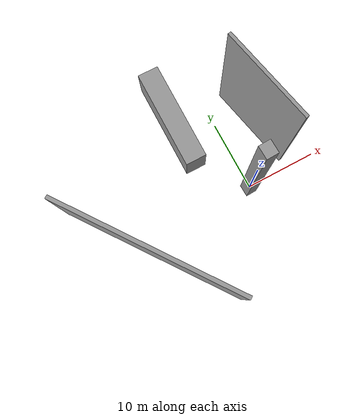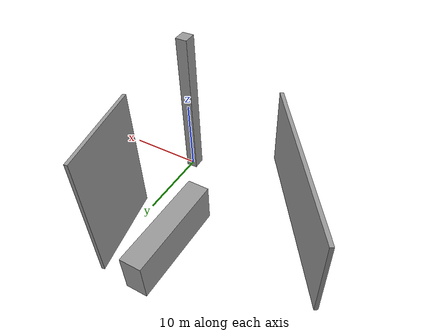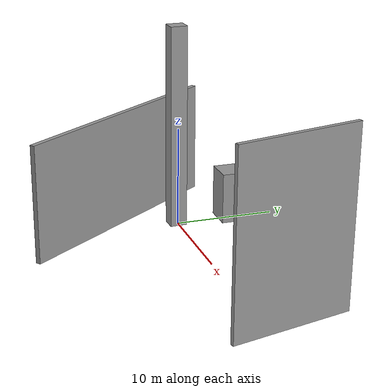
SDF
<sdf version="1.7">
 <world name="default">
  <plugin name="mrs_gazebo_static_transform_republisher_plugin" filename="libMRSGazeboStaticTransformRepublisher.so"/>
  <spherical_coordinates>
   <surface_model>EARTH_WGS84</surface_model>
   <latitude_deg>47.3977</latitude_deg>
   <longitude_deg>8.54559</longitude_deg>
   <elevation>0</elevation>
   <heading_deg>0</heading_deg>
  </spherical_coordinates>
  <physics name="default_physics" default="0" type="ode">
   <ode>
    <solver>
     <type>quick</type>
     <iters>10</iters>
     <sor>1.3</sor>
     <use_dynamic_moi_rescaling>0</use_dynamic_moi_rescaling>
    </solver>
    <constraints>
     <cfm>0</cfm>
     <erp>0.2</erp>
     <contact_max_correcting_vel>1000</contact_max_correcting_vel>
     <contact_surface_layer>0.001</contact_surface_layer>
    </constraints>
   </ode>
   <max_step_size>0.004</max_step_size>
   <real_time_factor>1</real_time_factor>
   <real_time_update_rate>250</real_time_update_rate>
  </physics>
  <light name="sun" type="directional">
   <pose>0 0 1000 0.4 0.2 0</pose>
   <diffuse>1 1 1 1</diffuse>
   <specular>0.6 0.6 0.6 1</specular>
   <direction>0.1 0.1 -0.9</direction>
   <attenuation>
    <range>20</range>
    <constant>0.5</constant>
    <linear>0.01</linear>
    <quadratic>0.001</quadratic>
   </attenuation>
   <spot><inner_angle>0</inner_angle><outer_angle>0</outer_angle><falloff>0</falloff></spot>
  </light>
  <gravity>0 0 -9.8066</gravity>
  <magnetic_field>6e-06 2.3e-05 -4.2e-05</magnetic_field>
  <atmosphere type="adiabatic"/>
  <scene><ambient>0.4 0.4 0.4 1</ambient><background>0.7 0.7 0.7 1</background><shadows>1</shadows></scene>
  <model name="unit_box">
   <static>1</static>
   <pose>-0.239111 -0.106206 10.1118 0.000109 -2e-06 0.038889</pose>
   <link name="link">
    <inertial>
     <mass>1</mass>
     <inertia>
      <ixx>0.166667</ixx>
      <ixy>0</ixy>
      <ixz>0</ixz>
      <iyy>0.166667</iyy>
      <iyz>0</iyz>
      <izz>0.166667</izz>
     </inertia>
    </inertial>
    <collision name="collision"><geometry><box><size>1.50316 1.68291 20.2236</size></box></geometry></collision>
    <visual name="visual">
     <geometry><box><size>1.50316 1.68291 20.2236</size></box></geometry>
     <material>
      <script><name>Gazebo/Grey</name><uri>file://media/materials/scripts/gazebo.material</uri></script>
     </material>
    </visual>
   </link>
  </model>
  <model name="unit_box_0">
   <static>1</static>
   <pose>-5.08848 13.3678 0.5 0 -0 0</pose>
   <link name="link">
    <inertial>
     <mass>1</mass>
     <inertia>
      <ixx>0.166667</ixx>
      <ixy>0</ixy>
      <ixz>0</ixz>
      <iyy>0.166667</iyy>
      <iyz>0</iyz>
      <izz>0.166667</izz>
     </inertia>
    </inertial>
    <collision name="collision"><geometry><box><size>2.99294 14.3423 5.47093</size></box></geometry></collision>
    <visual name="visual">
     <geometry><box><size>2.99294 14.3423 5.47093</size></box></geometry>
     <material>
      <script><name>Gazebo/Grey</name><uri>file://media/materials/scripts/gazebo.material</uri></script>
     </material>
    </visual>
   </link>
  </model>
  <model name="unit_box_1">
   <static>1</static>
   <pose>-16.1874 -1.51974 0.5 0 -0 0.624933</pose>
   <link name="link">
    <inertial>
     <mass>1</mass>
     <inertia>
      <ixx>0.166667</ixx>
      <ixy>0</ixy>
      <ixz>0</ixz>
      <iyy>0.166667</iyy>
      <iyz>0</iyz>
      <izz>0.166667</izz>
     </inertia>
    </inertial>
    <collision name="collision"><geometry><box><size>0.579754 28.5433 13.2746</size></box></geometry></collision>
    <visual name="visual">
     <geometry><box><size>0.579754 28.5433 13.2746</size></box></geometry>
     <material>
      <script><name>Gazebo/Grey</name><uri>file://media/materials/scripts/gazebo.material</uri></script>
     </material>
    </visual>
   </link>
  </model>
  <model name="unit_box_2">
   <static>1</static>
   <pose>6.87526 9.90714 0.5 0 -0 1.78739</pose>
   <link name="link">
    <inertial>
     <mass>1</mass>
     <inertia>
      <ixx>0.166667</ixx>
      <ixy>0</ixy>
      <ixz>0</ixz>
      <iyy>0.166667</iyy>
      <iyz>0</iyz>
      <izz>0.166667</izz>
     </inertia>
    </inertial>
    <collision name="collision"><geometry><box><size>14.5264 0.499468 20.8414</size></box></geometry></collision>
    <visual name="visual">
     <geometry><box><size>14.5264 0.499468 20.8414</size></box></geometry>
     <material>
      <script><name>Gazebo/Grey</name><uri>file://media/materials/scripts/gazebo.material</uri></script>
     </material>
    </visual>
   </link>
  </model>
 </world>
</sdf>
